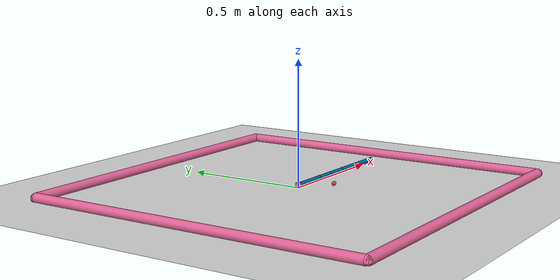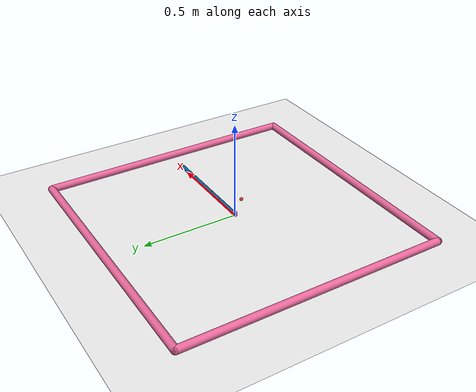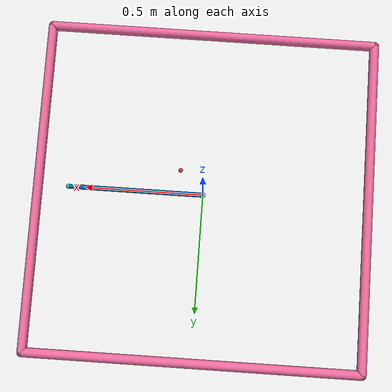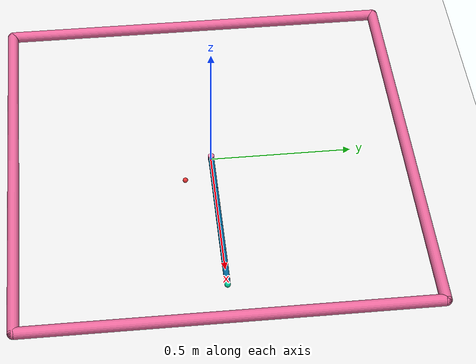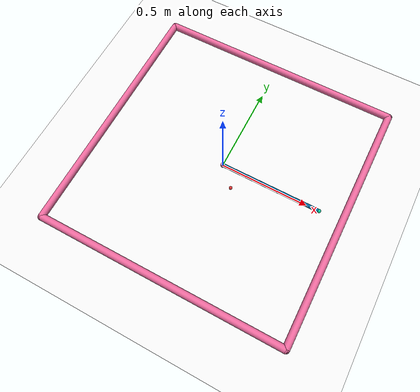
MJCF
<mujoco model="reacher">
	<compiler angle="radian" inertiafromgeom="true"/>
	<default>
		<joint armature="1" damping="1" limited="true"/>
		<geom contype="0" friction="1 0.1 0.1" rgba="0.7 0.7 0 1"/>
	</default>
	<option gravity="0 0 -9.81" integrator="RK4" timestep="0.01"/>
	<worldbody>
		<light cutoff="100" diffuse="1 1 1" dir="-0 0 -1.3" directional="true" exponent="1" pos="0 0 1.3" specular=".1 .1 .1" castshadow="false"/>
		<!-- Arena -->
		<geom conaffinity="0" contype="0" name="ground" pos="0 0 0" rgba="0.9 0.9 0.9 1" size="1 1 10" type="plane"/>
		<geom conaffinity="0" fromto="-.7 -.7 .01 .7 -.7 .01" name="sideS" rgba="0.9 0.4 0.6 1" size=".02" type="capsule"/>
		<geom conaffinity="0" fromto=" .7 -.7 .01 .7  .7 .01" name="sideE" rgba="0.9 0.4 0.6 1" size=".02" type="capsule"/>
		<geom conaffinity="0" fromto="-.7  .7 .01 .7  .7 .01" name="sideN" rgba="0.9 0.4 0.6 1" size=".02" type="capsule"/>
		<geom conaffinity="0" fromto="-.7 -.7 .01 -.7 .7 .01" name="sideW" rgba="0.9 0.4 0.6 1" size=".02" type="capsule"/>
		<!-- Arm -->
		<geom conaffinity="0" contype="0" fromto="0 0 0 0 0 0.02" name="root" rgba="0.9 0.4 0.6 1" size=".011" type="cylinder"/>
		<body name="body0" pos="0 0 .01">
			<geom fromto="0 0 0 0.15 0 0" name="link0" rgba="0.0 0.4 0.6 1" size=".01" type="capsule"/>
			<joint axis="0 0 1" limited="false" name="joint0" pos="0 0 0" type="hinge"/>
			<body name="body1" pos="0.15 0 0">
				<joint axis="0 0 1" limited="true" name="joint1" pos="0 0 0" range="-3.0 3.0" type="hinge"/>
				<geom fromto="0 0 0 0.08 0 0" name="link1" rgba="0.0 0.4 0.6 1" size=".01" type="capsule"/>
				<body name="body2" pos="0.08 0 0">
					<joint axis="0 0 1" limited="true" name="joint2" pos="0 0 0" range="-3.0 3.0" type="hinge"/>
					<geom fromto="0 0 0 0.09 0 0" name="link2" rgba="0.0 0.4 0.6 1" size=".01" type="capsule"/>
					<body name="body3" pos="0.09 0 0">
						<joint axis="0 0 1" limited="true" name="joint3" pos="0 0 0" range="-3.0 3.0" type="hinge"/>
						<geom fromto="0 0 0 0.11 0 0" name="link3" rgba="0.0 0.4 0.6 1" size=".01" type="capsule"/>
						<body name="body4" pos="0.11 0 0">
							<joint axis="0 0 1" limited="true" name="joint4" pos="0 0 0" range="-3.0 3.0" type="hinge"/>
							<geom fromto="0 0 0 0.13 0 0" name="link4" rgba="0.0 0.4 0.6 1" size=".01" type="capsule"/>
								<body name="fingertip" pos="0.14 0 0">
									<geom contype="0" name="fingertip" pos="0 0 0" rgba="0.0 0.8 0.6 1" size=".01" type="sphere"/>
								</body>
						</body>
					</body>
				</body>
			</body>
		</body>
		<!-- Target -->
		<body name="target" pos=".1 -.1 .01">
			<joint armature="0" axis="1 0 0" damping="0" limited="true" name="target_x" pos="0 0 0" range="-.8 .8" ref=".1" stiffness="0" type="slide"/>
			<joint armature="0" axis="0 1 0" damping="0" limited="true" name="target_y" pos="0 0 0" range="-.8 .8" ref="-.1" stiffness="0" type="slide"/>
			<geom conaffinity="0" contype="0" name="target" pos="0 0 0" rgba="0.9 0.2 0.2 1" size=".009" type="sphere"/>
		</body>
	</worldbody>
	<actuator>
		<motor ctrllimited="true" ctrlrange="-1.0 1.0" gear="20.0" joint="joint0"/>
		<motor ctrllimited="true" ctrlrange="-1.0 1.0" gear="20.0" joint="joint1"/>
		<motor ctrllimited="true" ctrlrange="-1.0 1.0" gear="20.0" joint="joint2"/>
		<motor ctrllimited="true" ctrlrange="-1.0 1.0" gear="20.0" joint="joint3"/>
		<motor ctrllimited="true" ctrlrange="-1.0 1.0" gear="20.0" joint="joint4"/>
	</actuator>
</mujoco>
